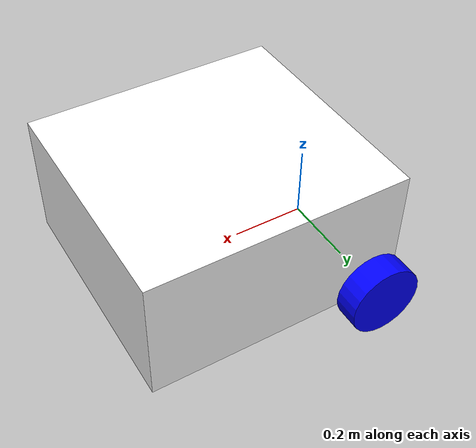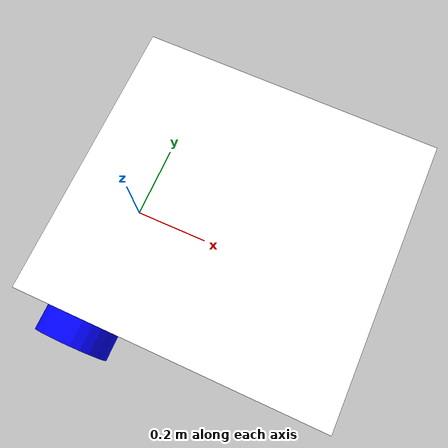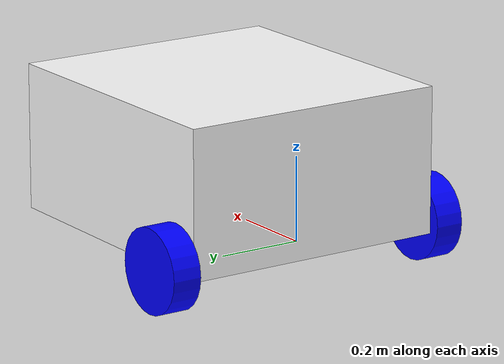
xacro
<?xml version="1.0"?>
<robot xmlns:xacro="http://www.ros.org/wiki/xacro">

    <xacro:include filename="inertial_macros.xacro"/>

    <material name="white">
        <color rgba="1 1 1 1"/>
    </material>

    <material name="orange">
        <color rgba="1 0.3 0.1 1"/>
    </material>

    <material name="blue">
        <color rgba="0 0 1 1"/>
    </material>

    <material name="black">
        <color rgba="0 0 0 1"/>
    </material>

    <!-- CHASSIS LINK -->

    <link name="base_link"></link>

    <joint name="chassis_joint" type="fixed">
        <parent link="base_link"/>
        <child link="chassis"/>
        <origin xyz="-0.072 0 0"/>
    </joint>

    <link name="chassis">
        <visual>
            <origin xyz="0.3475 0 0.155"/>
            <geometry>
                <box size="0.695 0.65 0.35"/>
            </geometry>
            <material name="white"/>
        </visual>
        <collision>
            <origin xyz="0.3475 0 0.155"/>
            <geometry>
                <box size="0.695 0.65 0.35"/>
            </geometry>
        </collision>
        <xacro:inertial_box mass="0.5" x="0.695" y="0.65" z="0.35">
            <origin xyz="0.3475 0 0.155" rpy="0 0 0"/>
        </xacro:inertial_box>
    </link>

    <!-- RIGHT WHEEL LINK -->

    <joint name="right_wheel_joint" type="continuous">
        <parent link="base_link"/>
        <child link="right_wheel"/>
        <origin xyz="0 0.36 0" rpy="-${pi/2} 0 0"/>
        <axis xyz="0 0 1"/>
    </joint>

    <link name="right_wheel">
        <visual>
            <geometry>
                <cylinder radius="0.1" length="0.07"/>
            </geometry>
            <material name="blue"/>
        </visual>
        <collision>
            <geometry>
                <cylinder radius="0.1" length="0.07"/>
            </geometry>
        </collision>
        <xacro:inertial_cylinder mass="0.1" length="0.07" radius="0.1">
            <origin xyz="0 0 0" rpy="0 0 0"/>
        </xacro:inertial_cylinder>
    </link>

    <!-- LEFT WHEEL LINK -->

    <joint name="left_wheel_joint" type="continuous">
        <parent link="base_link"/>
        <child link="left_wheel"/>
        <origin xyz="0 -0.36 0" rpy="${pi/2} 0 0"/>
        <axis xyz="0 0 -1"/>
    </joint>

    <link name="left_wheel">
        <visual>
            <geometry>
                <cylinder radius="0.1" length="0.07"/>
            </geometry>
            <material name="blue"/>
        </visual>
        <collision>
            <geometry>
                <cylinder radius="0.1" length="0.07"/>
            </geometry>
        </collision>
        <xacro:inertial_cylinder mass="0.1" length="0.07" radius="0.1">
            <origin xyz="0 0 0" rpy="0 0 0"/>
        </xacro:inertial_cylinder>
    </link>

    <!-- CASTOR WHEEL LINK -->
    <joint name="caster_wheel_joint" type="fixed">
        <parent link="base_link"/>
        <child link="castor_wheel"/>
        <origin xyz="0.50 0 0"/>
    </joint>

    <link name="castor_wheel">
        <visual>
            <geometry>
                <sphere radius="0.1"/>
            </geometry>
            <material name="black"/>
        </visual>
        <collision>
            <geometry>
                <sphere radius="0.1"/>
            </geometry>
        </collision>
            <xacro:inertial_sphere mass="0.1" radius="0.1">
            <origin xyz="0 0 0" rpy="0 0 0"/>
        </xacro:inertial_sphere>
    </link>

</robot>
